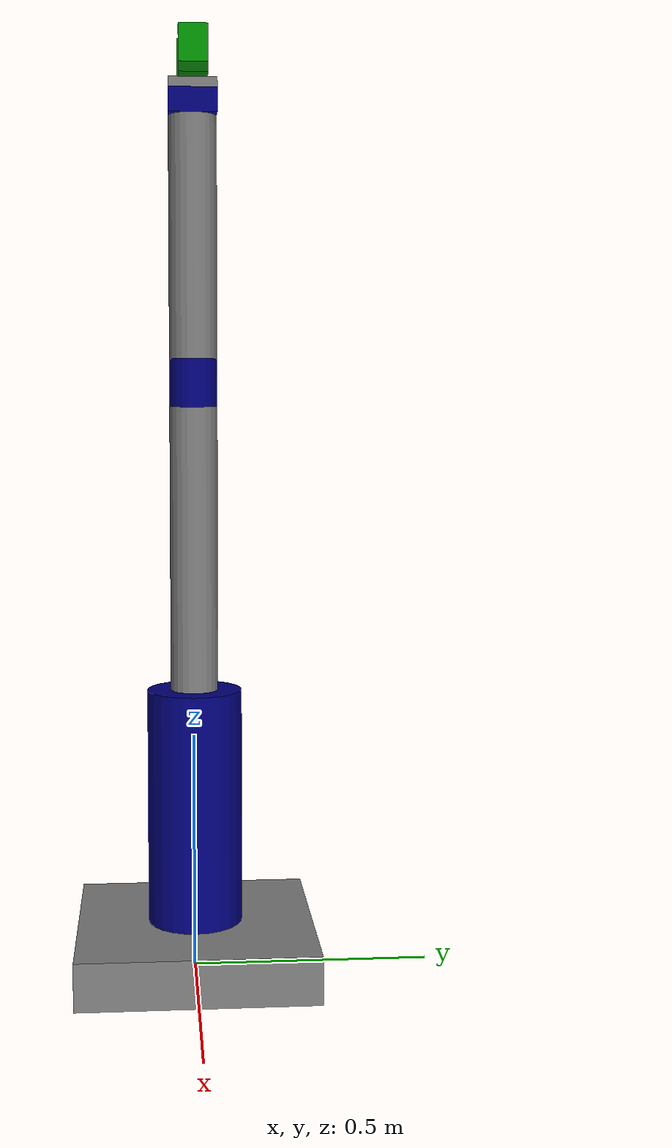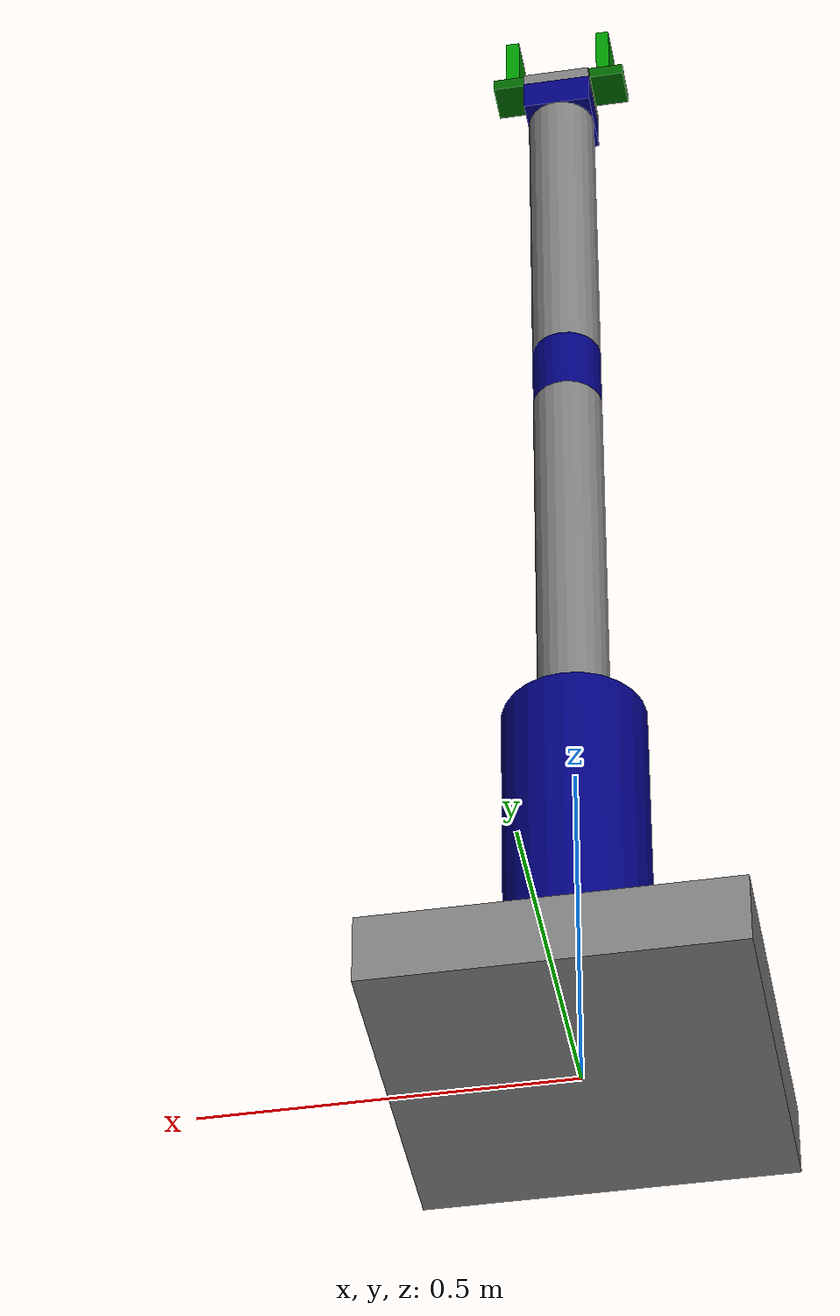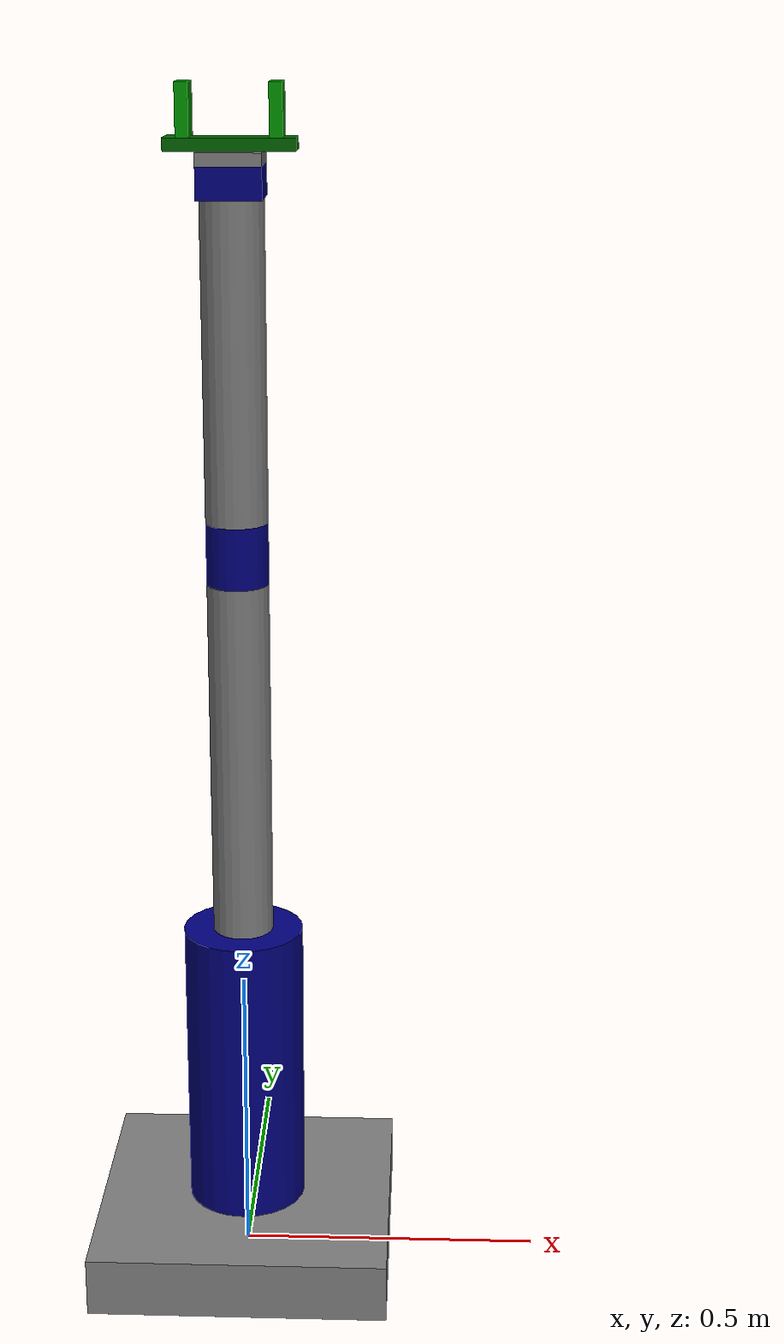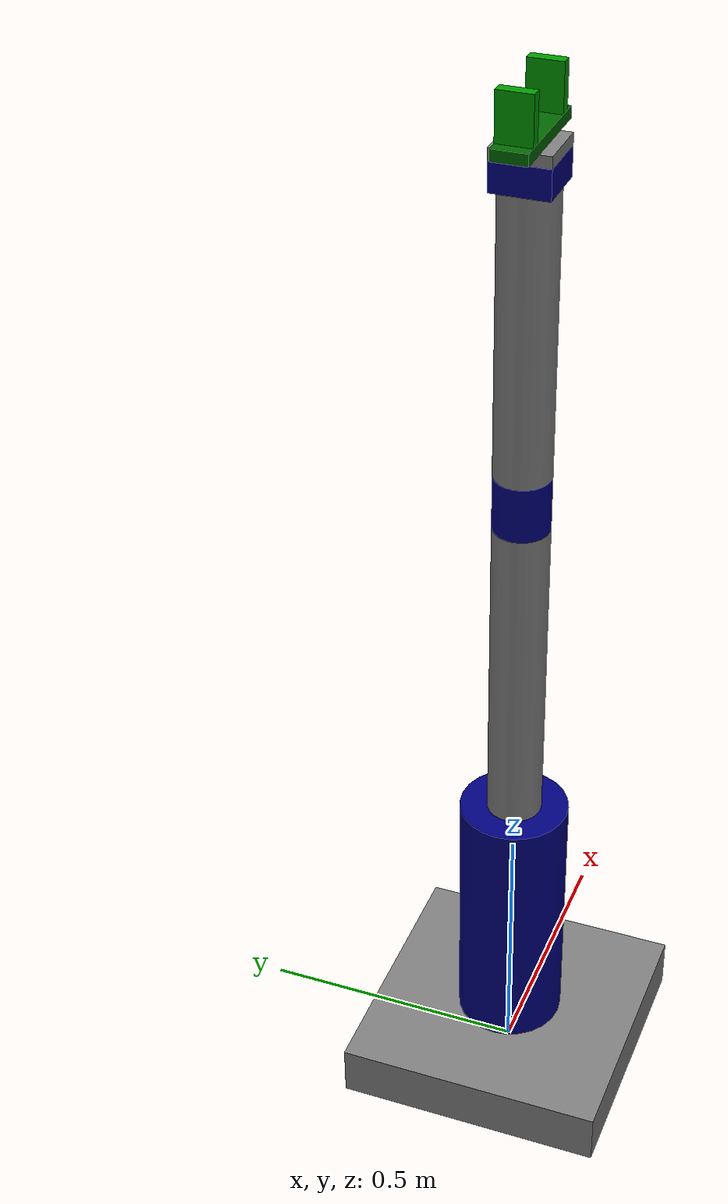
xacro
<?xml version="1.0"?>
<robot name="my_robot" xmlns:xacro="http://www.ros.org/wiki/xacro">

    <xacro:include filename="common_properties.xacro" />
    <xacro:include filename="arm.xacro" />
    <xacro:include filename="gripper.xacro" />
    <xacro:include filename="my_robot.ros2_control.xacro" />

    <joint name="gripper_base_joint" type="fixed">
        <parent link ="tool_link"/>
        <child link ="gripper_base_link"/>
        <origin xyz="0 0 0" rpy="0 0 0"/>
    </joint>

</robot>

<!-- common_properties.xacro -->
<robot xmlns:xacro="http://www.ros.org/wiki/xacro">

    <material name="grey">
        <color rgba="0.5 0.5 0.5 1"/>
    </material>

    <material name="blue">
        <color rgba="0 0 0.5 1"/>
    </material>

    <material name="dar_green">
        <color rgba="0 0.4 0 1"/>
    </material>

    <material name="light_green">
        <color rgba="0 0.6 0 1"/>
    </material>

</robot>

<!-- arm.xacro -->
<robot xmlns:xacro="http://www.ros.org/wiki/xacro">

    <link name="base_link">
        <visual>
            <geometry>
                <box size="0.5 0.5 0.1"/>
            </geometry>
            <origin xyz="0 0 0.05" rpy="0 0 0"/>
            <material name="grey"/>
        </visual>
        <collision>
            <geometry>
                <box size="0.5 0.5 0.1"/>
            </geometry>
            <origin xyz="0 0 0.05" rpy="0 0 0"/>
        </collision>
    </link>
    <link name="shoulder_link">
        <visual>
            <geometry>
                <cylinder length="0.5" radius="0.1"/>
            </geometry>
            <origin xyz="0 0 0.25" rpy="0 0 0"/>
            <material name="blue"/>
        </visual>
        <collision>
            <geometry>
                <box size="0.2 0.2 0.5"/>
            </geometry>
            <origin xyz="0 0 0.25" rpy="0 0 0"/>
        </collision>
    </link>

    <joint name="joint1" type="revolute">
        <parent link ="base_link"/>
        <child link ="shoulder_link"/>
        <origin xyz="0 0 0.1" rpy="0 0 0"/>
        <axis xyz="0 0 1"/>
        <limit lower="-3.14" upper="3.14" effort="1000" velocity="1.0"/>
    </joint>

    <link name = "arm_link">
        <visual>
            <geometry>
                <cylinder length="0.6" radius="0.05"/>
            </geometry>
            <origin xyz="0 0 0.3" rpy="0 0 0"/>
            <material name="grey"/>
        </visual>
        <collision>
            <geometry>
                <box size="0.1 0.1 0.6"/>
            </geometry>
            <origin xyz="0 0 0.3" rpy="0 0 0"/>
        </collision>
    </link>

    <joint name="joint2" type="revolute">
        <parent link ="shoulder_link"/>
        <child link ="arm_link"/>
        <origin xyz="0 0 0.5" rpy="0 0 0"/>
        <axis xyz="0 1 0"/>
        <limit lower="0" upper="2.5" effort="1000" velocity="1.0"/>
    </joint>

    <link name="elbow_link">
        <visual>
            <geometry>
                <cylinder length="0.1" radius="0.05"/>
            </geometry>
            <origin xyz="0 0 0.05" rpy="0 0 0"/>
            <material name="blue"/>
        </visual>
        <collision>
            <geometry>
                <box size="0.1 0.1 0.1"/>
            </geometry>
            <origin xyz="0 0 0.05" rpy="0 0 0"/>
        </collision>
    </link>

    <joint name="joint3" type="revolute">
        <parent link ="arm_link"/>
        <child link ="elbow_link"/>
        <origin xyz="0 0 0.6" rpy="0 0 0"/>
        <axis xyz="0 1 0"/>
        <limit lower="0" upper="2.5" effort="1000" velocity="1.0"/>
    </joint>

    <link name="forearm_link">
        <visual>
            <geometry>
                <cylinder length="0.5" radius="0.05"/>
            </geometry>
            <origin xyz="0 0 0.25" rpy="0 0 0"/>
            <material name="grey"/>
        </visual>
        <collision>
            <geometry>
                <box size="0.1 0.1 0.5"/>
            </geometry>
            <origin xyz="0 0 0.25" rpy="0 0 0"/>
        </collision>
    </link>

    <joint name="joint4" type="revolute">
        <parent link ="elbow_link"/>
        <child link ="forearm_link"/>
        <origin xyz="0 0 0.1" rpy="0 0 0"/>
        <axis xyz="0 0 1"/>
        <limit lower="-3.14" upper="3.14" effort="1000" velocity="1.0"/>
    </joint>

    <link name="wrist_link">
        <visual>
            <geometry>
                <box size="0.1 0.1 0.05"/>
            </geometry>
            <origin xyz="0 0 0.025" rpy="0 0 0"/>
            <material name="blue"/>
        </visual>
        <collision>
            <geometry>
                <box size="0.1 0.1 0.05"/>
            </geometry>
            <origin xyz="0 0 0.025" rpy="0 0 0"/>
        </collision>
    </link>

    <joint name="joint5" type="revolute">
        <parent link ="forearm_link"/>
        <child link ="wrist_link"/>
        <origin xyz="0 0 0.5" rpy="0 0 0"/>
        <axis xyz="0 1 0"/>
        <limit lower="-1.57" upper="1.57" effort="1000" velocity="1.0"/>
    </joint>

    <link name="hand_link">
        <visual>
            <geometry>
                <box size="0.1 0.1 0.02"/>
            </geometry>
            <origin xyz="0 0 0.01" rpy="0 0 0"/>
            <material name="grey"/>
        </visual>
        <collision>
            <geometry>
                <box size="0.1 0.1 0.02"/>
            </geometry>
            <origin xyz="0 0 0.01" rpy="0 0 0"/>
        </collision>
    </link>

    <joint name="joint6" type="continuous">
        <parent link ="wrist_link"/>
        <child link ="hand_link"/>
        <origin xyz="0 0 0.05" rpy="0 0 0"/>
        <axis xyz="0 0 1"/>
    </joint>

    <link name="tool_link">
    </link>

    <joint name="hand_tool_joint" type="fixed">
        <parent link ="hand_link"/>
        <child link ="tool_link"/>
        <origin xyz="0 0 0.02" rpy="0 0 0"/>
    </joint>
</robot>

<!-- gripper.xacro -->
<robot xmlns:xacro="http://www.ros.org/wiki/xacro">

    <link name="gripper_base_link">
        <visual>
            <geometry>
                <box size="0.2 0.06 0.02"/>
            </geometry>
            <origin xyz="0 0 0.01" rpy="0 0 0"/>
            <material name="dar_green"/>
        </visual>
        <collision>
            <geometry>
                <box size="0.2 0.06 0.02"/>
            </geometry>
            <origin xyz="0 0 0.01" rpy="0 0 0"/>
        </collision>
    </link>

    <link name="gripper_left_finger_link">
        <visual>
            <geometry>
                <box size="0.02 0.06 0.08"/>
            </geometry>
            <origin xyz="0 0 0.04" rpy="0 0 0"/>
            <material name="light_green"/>
        </visual>
        <collision>
            <geometry>
                <box size="0.02 0.06 0.08"/>
            </geometry>
            <origin xyz="0 0 0.04" rpy="0 0 0"/>
        </collision>
    </link>

    <joint name="gripper_left_finger_joint" type="prismatic">
        <parent link="gripper_base_link"/>
        <child link="gripper_left_finger_link"/>
        <origin xyz="-0.07 0 0.02" rpy="0 0 0"/>
        <axis xyz="1 0 0"/>
        <limit effort="1000" velocity="0.1" lower="0" upper="0.06"/>
    </joint>

    <link name="gripper_right_finger_link">
        <visual>
            <geometry>
                <box size="0.02 0.06 0.08"/>
            </geometry>
            <origin xyz="0 0 0.04" rpy="0 0 0"/>
            <material name="light_green"/>
        </visual>
        <collision>
            <geometry>
                <box size="0.02 0.06 0.08"/>
            </geometry>
            <origin xyz="0 0 0.04" rpy="0 0 0"/>
        </collision>
    </link>

    <joint name="gripper_right_finger_joint" type="prismatic">
        <parent link="gripper_base_link"/>
        <child link="gripper_right_finger_link"/>
        <origin xyz="0.07 0 0.02" rpy="0 0 0"/>
        <axis xyz="1 0 0"/>
        <mimic joint="gripper_left_finger_joint" multiplier="-1.0"/>
        <limit effort="1000" velocity="0.1" lower="-0.06" upper="0"/>
    </joint>

</robot>
